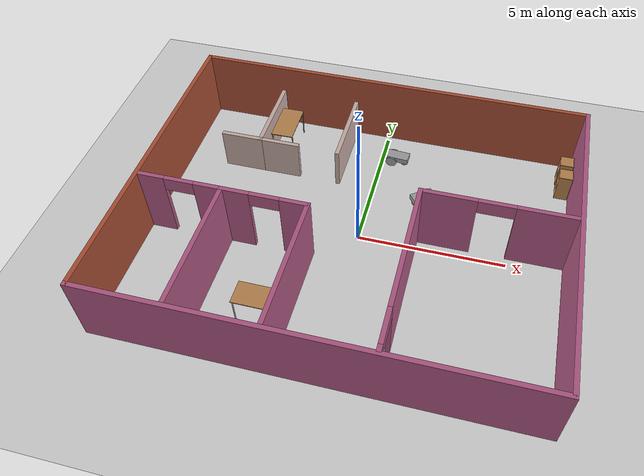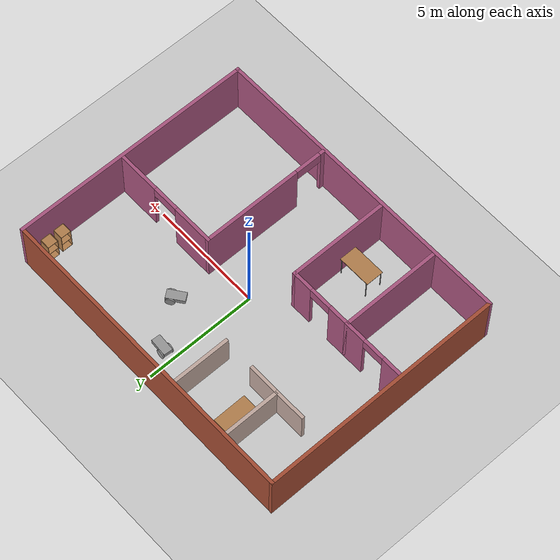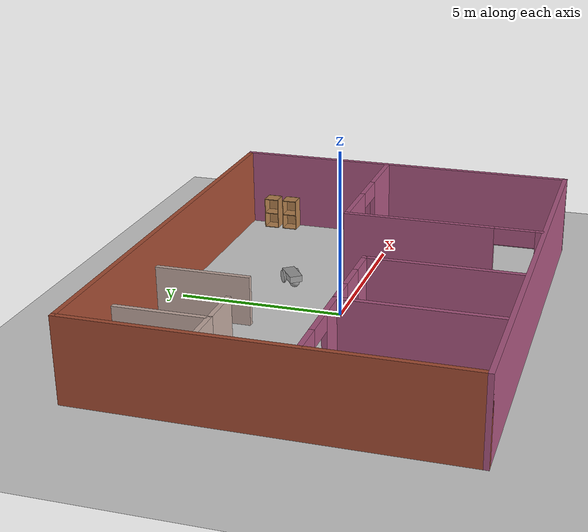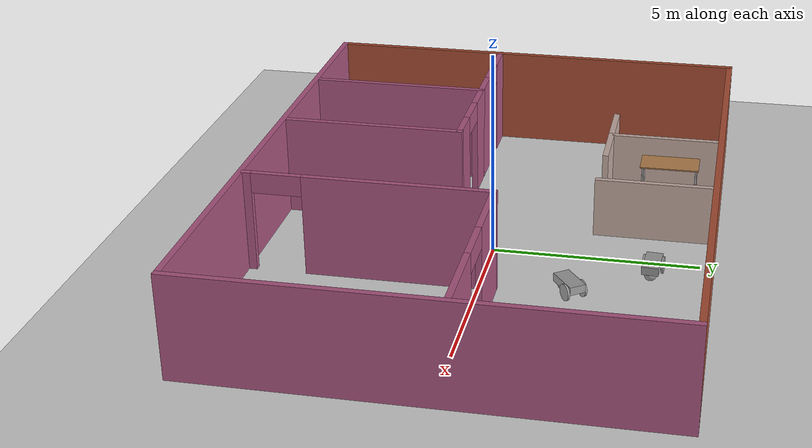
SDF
<sdf version="1.6">
 <world name="default">
  <plugin name="hello" filename="libhello.so"/>
  <light name="sun" type="directional">
   <pose>0 0 10 0 -0 0</pose>
   <diffuse>0.8 0.8 0.8 1</diffuse>
   <specular>0.2 0.2 0.2 1</specular>
   <attenuation>
    <range>1000</range>
    <constant>0.9</constant>
    <linear>0.01</linear>
    <quadratic>0.001</quadratic>
   </attenuation>
   <direction>-0.5 0.1 -0.9</direction>
  </light>
  <model name="ground_plane">
   <static>1</static>
   <link name="link">
    <collision name="collision">
     <geometry><plane><normal>0 0 1</normal><size>100 100</size></plane></geometry>
     <surface><friction><ode><mu>100</mu><mu2>50</mu2></ode></friction></surface>
    </collision>
    <visual name="visual">
     <cast_shadows>0</cast_shadows>
     <geometry><plane><normal>0 0 1</normal><size>100 100</size></plane></geometry>
     <material>
      <script><uri>file://media/materials/scripts/gazebo.material</uri><name>Gazebo/Grey</name></script>
     </material>
    </visual>
   </link>
  </model>
  <gravity>0 0 -9.8</gravity>
  <magnetic_field>6e-06 2.3e-05 -4.2e-05</magnetic_field>
  <atmosphere type="adiabatic"/>
  <physics name="default_physics" default="0" type="ode">
   <max_step_size>0.001</max_step_size>
   <real_time_factor>1</real_time_factor>
   <real_time_update_rate>1000</real_time_update_rate>
  </physics>
  <scene><ambient>0.4 0.4 0.4 1</ambient><background>0.7 0.7 0.7 1</background><shadows>1</shadows></scene>
  <spherical_coordinates>
   <surface_model>EARTH_WGS84</surface_model>
   <latitude_deg>0</latitude_deg>
   <longitude_deg>0</longitude_deg>
   <elevation>0</elevation>
   <heading_deg>0</heading_deg>
  </spherical_coordinates>
  <model name="Building">
   <pose>-0.086047 -0.158335 0 0 -0 0</pose>
   <link name="Wall_12">
    <pose>-5.528 -0.925 0 0 -0 0</pose>
    <visual name="Wall_12_Visual_0">
     <pose>-1.00127 0 1.25 0 -0 0</pose>
     <geometry><box><size>0.997471 0.15 2.5</size></box></geometry>
     <material>
      <script><uri>file://media/materials/scripts/gazebo.material</uri><name>Gazebo/Grey</name></script>
      <ambient>0.666667 0.333333 0.498039 1</ambient>
     </material>
     <meta><layer>0</layer></meta>
    </visual>
    <collision name="Wall_12_Collision_0">
     <geometry><box><size>0.997471 0.15 2.5</size></box></geometry>
     <pose>-1.00127 0 1.25 0 -0 0</pose>
    </collision>
    <visual name="Wall_12_Visual_1">
     <pose>0.998735 0 1.25 0 -0 0</pose>
     <geometry><box><size>1.00253 0.15 2.5</size></box></geometry>
     <material>
      <script><uri>file://media/materials/scripts/gazebo.material</uri><name>Gazebo/Grey</name></script>
      <ambient>0.666667 0.333333 0.498039 1</ambient>
     </material>
     <meta><layer>0</layer></meta>
    </visual>
    <collision name="Wall_12_Collision_1">
     <geometry><box><size>1.00253 0.15 2.5</size></box></geometry>
     <pose>0.998735 0 1.25 0 -0 0</pose>
    </collision>
    <visual name="Wall_12_Visual_2">
     <pose>-0.002529 0 2.25 0 -0 0</pose>
     <geometry><box><size>1 0.15 0.5</size></box></geometry>
     <material>
      <script><uri>file://media/materials/scripts/gazebo.material</uri><name>Gazebo/Grey</name></script>
      <ambient>0.666667 0.333333 0.498039 1</ambient>
     </material>
     <meta><layer>0</layer></meta>
    </visual>
    <collision name="Wall_12_Collision_2">
     <geometry><box><size>1 0.15 0.5</size></box></geometry>
     <pose>-0.002529 0 2.25 0 -0 0</pose>
    </collision>
   </link>
   <link name="Wall_15">
    <collision name="Wall_15_Collision">
     <geometry><box><size>4.5 0.15 2.5</size></box></geometry>
     <pose>0 0 1.25 0 -0 0</pose>
    </collision>
    <visual name="Wall_15_Visual">
     <pose>0 0 1.25 0 -0 0</pose>
     <geometry><box><size>4.5 0.15 2.5</size></box></geometry>
     <material>
      <script><uri>file://media/materials/scripts/gazebo.material</uri><name>Gazebo/Grey</name></script>
      <ambient>0.666667 0.333333 0.498039 1</ambient>
     </material>
     <meta><layer>0</layer></meta>
    </visual>
    <pose>-4.103 -3.1 0 0 0 -1.5708</pose>
   </link>
   <link name="Wall_17">
    <pose>-2.678 -0.925 0 0 -0 0</pose>
    <visual name="Wall_17_Visual_0">
     <pose>-0.996642 0 1.25 0 -0 0</pose>
     <geometry><box><size>1.00672 0.15 2.5</size></box></geometry>
     <material>
      <script><uri>file://media/materials/scripts/gazebo.material</uri><name>Gazebo/Grey</name></script>
      <ambient>0.666667 0.333333 0.498039 1</ambient>
     </material>
     <meta><layer>0</layer></meta>
    </visual>
    <collision name="Wall_17_Collision_0">
     <geometry><box><size>1.00672 0.15 2.5</size></box></geometry>
     <pose>-0.996642 0 1.25 0 -0 0</pose>
    </collision>
    <visual name="Wall_17_Visual_1">
     <pose>1.00336 0 1.25 0 -0 0</pose>
     <geometry><box><size>0.993284 0.15 2.5</size></box></geometry>
     <material>
      <script><uri>file://media/materials/scripts/gazebo.material</uri><name>Gazebo/Grey</name></script>
      <ambient>0.666667 0.333333 0.498039 1</ambient>
     </material>
     <meta><layer>0</layer></meta>
    </visual>
    <collision name="Wall_17_Collision_1">
     <geometry><box><size>0.993284 0.15 2.5</size></box></geometry>
     <pose>1.00336 0 1.25 0 -0 0</pose>
    </collision>
    <visual name="Wall_17_Visual_2">
     <pose>0.006716 0 2.25 0 -0 0</pose>
     <geometry><box><size>1 0.15 0.5</size></box></geometry>
     <material>
      <script><uri>file://media/materials/scripts/gazebo.material</uri><name>Gazebo/Grey</name></script>
      <ambient>0.666667 0.333333 0.498039 1</ambient>
     </material>
     <meta><layer>0</layer></meta>
    </visual>
    <collision name="Wall_17_Collision_2">
     <geometry><box><size>1 0.15 0.5</size></box></geometry>
     <pose>0.006716 0 2.25 0 -0 0</pose>
    </collision>
   </link>
   <link name="Wall_19">
    <collision name="Wall_19_Collision">
     <geometry><box><size>4.5 0.15 2.5</size></box></geometry>
     <pose>0 0 1.25 0 -0 0</pose>
    </collision>
    <visual name="Wall_19_Visual">
     <pose>0 0 1.25 0 -0 0</pose>
     <geometry><box><size>4.5 0.15 2.5</size></box></geometry>
     <material>
      <script><uri>file://media/materials/scripts/gazebo.material</uri><name>Gazebo/Grey</name></script>
      <ambient>0.666667 0.333333 0.498039 1</ambient>
     </material>
     <meta><layer>0</layer></meta>
    </visual>
    <pose>-1.253 -3.1 0 0 0 -1.5708</pose>
   </link>
   <link name="Wall_21">
    <collision name="Wall_21_Collision">
     <geometry><box><size>3 0.15 1.5</size></box></geometry>
     <pose>0 0 0.75 0 -0 0</pose>
    </collision>
    <visual name="Wall_21_Visual">
     <pose>0 0 0.75 0 -0 0</pose>
     <geometry><box><size>3 0.15 1.5</size></box></geometry>
     <material>
      <script><uri>file://media/materials/scripts/gazebo.material</uri><name>Gazebo/Grey</name></script>
      <ambient>0.760784 0.662745 0.627451 1</ambient>
     </material>
     <meta><layer>0</layer></meta>
    </visual>
    <pose>-4.103 3.972 0 0 0 -1.5708</pose>
   </link>
   <link name="Wall_23">
    <collision name="Wall_23_Collision">
     <geometry><box><size>3 0.15 1.5</size></box></geometry>
     <pose>0 0 0.75 0 -0 0</pose>
    </collision>
    <visual name="Wall_23_Visual">
     <pose>0 0 0.75 0 -0 0</pose>
     <geometry><box><size>3 0.15 1.5</size></box></geometry>
     <material>
      <script><uri>file://media/materials/scripts/gazebo.material</uri><name>Gazebo/Grey</name></script>
      <ambient>0.760784 0.662745 0.627451 1</ambient>
     </material>
     <meta><layer>0</layer></meta>
    </visual>
    <pose>-1.253 3.952 0 0 0 -1.5708</pose>
   </link>
   <link name="Wall_25">
    <collision name="Wall_25_Collision">
     <geometry><box><size>1.5 0.15 1.5</size></box></geometry>
     <pose>0 0 0.75 0 -0 0</pose>
    </collision>
    <visual name="Wall_25_Visual">
     <pose>0 0 0.75 0 -0 0</pose>
     <geometry><box><size>1.5 0.15 1.5</size></box></geometry>
     <material>
      <script><uri>file://media/materials/scripts/gazebo.material</uri><name>Gazebo/Grey</name></script>
      <ambient>0.760784 0.662745 0.627451 1</ambient>
     </material>
     <meta><layer>0</layer></meta>
    </visual>
    <pose>-4.778 2.547 0 0 -0 3.14159</pose>
   </link>
   <link name="Wall_27">
    <collision name="Wall_27_Collision">
     <geometry><box><size>1.5 0.15 1.5</size></box></geometry>
     <pose>0 0 0.75 0 -0 0</pose>
    </collision>
    <visual name="Wall_27_Visual">
     <pose>0 0 0.75 0 -0 0</pose>
     <geometry><box><size>1.5 0.15 1.5</size></box></geometry>
     <material>
      <script><uri>file://media/materials/scripts/gazebo.material</uri><name>Gazebo/Grey</name></script>
      <ambient>0.760784 0.662745 0.627451 1</ambient>
     </material>
     <meta><layer>0</layer></meta>
    </visual>
    <pose>-3.428 2.547 0 0 -0 0</pose>
   </link>
   <link name="Wall_29">
    <pose>2 -2.399 0 0 -0 1.5708</pose>
    <visual name="Wall_29_Visual_0">
     <pose>-2.87898 0 1.25 0 -0 0</pose>
     <geometry><box><size>0.242034 0.15 2.5</size></box></geometry>
     <material>
      <script><uri>file://media/materials/scripts/gazebo.material</uri><name>Gazebo/Grey</name></script>
      <ambient>0.666667 0.333333 0.498039 1</ambient>
     </material>
     <meta><layer>0</layer></meta>
    </visual>
    <collision name="Wall_29_Collision_0">
     <geometry><box><size>0.242034 0.15 2.5</size></box></geometry>
     <pose>-2.87898 0 1.25 0 -0 0</pose>
    </collision>
    <visual name="Wall_29_Visual_1">
     <pose>0.721017 0 1.25 0 -0 0</pose>
     <geometry><box><size>4.55797 0.15 2.5</size></box></geometry>
     <material>
      <script><uri>file://media/materials/scripts/gazebo.material</uri><name>Gazebo/Grey</name></script>
      <ambient>0.666667 0.333333 0.498039 1</ambient>
     </material>
     <meta><layer>0</layer></meta>
    </visual>
    <collision name="Wall_29_Collision_1">
     <geometry><box><size>4.55797 0.15 2.5</size></box></geometry>
     <pose>0.721017 0 1.25 0 -0 0</pose>
    </collision>
    <visual name="Wall_29_Visual_2">
     <pose>-2.15797 0 2.25 0 -0 0</pose>
     <geometry><box><size>1.2 0.15 0.5</size></box></geometry>
     <material>
      <script><uri>file://media/materials/scripts/gazebo.material</uri><name>Gazebo/Grey</name></script>
      <ambient>0.666667 0.333333 0.498039 1</ambient>
     </material>
     <meta><layer>0</layer></meta>
    </visual>
    <collision name="Wall_29_Collision_2">
     <geometry><box><size>1.2 0.15 0.5</size></box></geometry>
     <pose>-2.15797 0 2.25 0 -0 0</pose>
    </collision>
   </link>
   <link name="Wall_3">
    <collision name="Wall_3_Collision">
     <geometry><box><size>14.15 0.15 2.5</size></box></geometry>
     <pose>0 0 1.25 0 -0 0</pose>
    </collision>
    <visual name="Wall_3_Visual">
     <pose>0 0 1.25 0 -0 0</pose>
     <geometry><box><size>14.15 0.15 2.5</size></box></geometry>
     <material>
      <script><uri>file://media/materials/scripts/gazebo.material</uri><name>Gazebo/Grey</name></script>
      <ambient>0.666667 0.333333 0.498039 1</ambient>
     </material>
     <meta><layer>0</layer></meta>
    </visual>
    <pose>0 -5.425 0 0 -0 0</pose>
   </link>
   <link name="Wall_31">
    <pose>4.425 0.526 0 0 -0 0</pose>
    <visual name="Wall_31_Visual_0">
     <pose>-1.55299 0 1.25 0 -0 0</pose>
     <geometry><box><size>1.89402 0.15 2.5</size></box></geometry>
     <material>
      <script><uri>file://media/materials/scripts/gazebo.material</uri><name>Gazebo/Grey</name></script>
      <ambient>0.666667 0.333333 0.498039 1</ambient>
     </material>
     <meta><layer>0</layer></meta>
    </visual>
    <collision name="Wall_31_Collision_0">
     <geometry><box><size>1.89402 0.15 2.5</size></box></geometry>
     <pose>-1.55299 0 1.25 0 -0 0</pose>
    </collision>
    <visual name="Wall_31_Visual_1">
     <pose>1.54701 0 1.25 0 -0 0</pose>
     <geometry><box><size>1.90598 0.15 2.5</size></box></geometry>
     <material>
      <script><uri>file://media/materials/scripts/gazebo.material</uri><name>Gazebo/Grey</name></script>
      <ambient>0.666667 0.333333 0.498039 1</ambient>
     </material>
     <meta><layer>0</layer></meta>
    </visual>
    <collision name="Wall_31_Collision_1">
     <geometry><box><size>1.90598 0.15 2.5</size></box></geometry>
     <pose>1.54701 0 1.25 0 -0 0</pose>
    </collision>
    <visual name="Wall_31_Visual_2">
     <pose>-0.005978 0 2.25 0 -0 0</pose>
     <geometry><box><size>1.2 0.15 0.5</size></box></geometry>
     <material>
      <script><uri>file://media/materials/scripts/gazebo.material</uri><name>Gazebo/Grey</name></script>
      <ambient>0.666667 0.333333 0.498039 1</ambient>
     </material>
     <meta><layer>0</layer></meta>
    </visual>
    <collision name="Wall_31_Collision_2">
     <geometry><box><size>1.2 0.15 0.5</size></box></geometry>
     <pose>-0.005978 0 2.25 0 -0 0</pose>
    </collision>
   </link>
   <link name="Wall_5">
    <collision name="Wall_5_Collision">
     <geometry><box><size>11 0.15 2.5</size></box></geometry>
     <pose>0 0 1.25 0 -0 0</pose>
    </collision>
    <visual name="Wall_5_Visual">
     <pose>0 0 1.25 0 -0 0</pose>
     <geometry><box><size>11 0.15 2.5</size></box></geometry>
     <material>
      <script><uri>file://media/materials/scripts/gazebo.material</uri><name>Gazebo/Bricks</name></script>
      <ambient>0.666667 0.333333 0.498039 1</ambient>
     </material>
     <meta><layer>0</layer></meta>
    </visual>
    <pose>-7 0 0 0 -0 1.5708</pose>
   </link>
   <link name="Wall_7">
    <collision name="Wall_7_Collision">
     <geometry><box><size>11 0.15 2.5</size></box></geometry>
     <pose>0 0 1.25 0 -0 0</pose>
    </collision>
    <visual name="Wall_7_Visual">
     <pose>0 0 1.25 0 -0 0</pose>
     <geometry><box><size>11 0.15 2.5</size></box></geometry>
     <material>
      <script><uri>file://media/materials/scripts/gazebo.material</uri><name>Gazebo/Grey</name></script>
      <ambient>0.666667 0.333333 0.498039 1</ambient>
     </material>
     <meta><layer>0</layer></meta>
    </visual>
    <pose>7 0 0 0 -0 1.5708</pose>
   </link>
   <link name="Wall_9">
    <collision name="Wall_9_Collision">
     <geometry><box><size>14 0.15 2.5</size></box></geometry>
     <pose>0 0 1.25 0 -0 0</pose>
    </collision>
    <visual name="Wall_9_Visual">
     <pose>0 0 1.25 0 -0 0</pose>
     <geometry><box><size>14 0.15 2.5</size></box></geometry>
     <material>
      <script><uri>file://media/materials/scripts/gazebo.material</uri><name>Gazebo/Bricks</name></script>
      <ambient>0.666667 0.333333 0.498039 1</ambient>
     </material>
     <meta><layer>0</layer></meta>
    </visual>
    <pose>-0.075 5.425 0 0 -0 0</pose>
   </link>
   <static>1</static>
  </model>
  <model name="Robot">
   <link name="link_1">
    <pose>-0.1 0 0 0 -0 0</pose>
    <inertial>
     <mass>1</mass>
     <inertia>
      <ixx>0.166667</ixx>
      <ixy>0</ixy>
      <ixz>0</ixz>
      <iyy>0.166667</iyy>
      <iyz>0</iyz>
      <izz>0.166667</izz>
     </inertia>
    </inertial>
    <visual name="visual">
     <geometry><box><size>0.8 0.4 0.2</size></box></geometry>
     <material>
      <lighting>1</lighting>
      <script><uri>file://media/materials/scripts/gazebo.material</uri><name>Gazebo/Grey</name></script>
      <ambient>0.3 0.3 0.3 1</ambient>
      <diffuse>0.7 0.7 0.7 1</diffuse>
      <specular>0.01 0.01 0.01 1</specular>
      <emissive>0 0 0 1</emissive>
      <shader type="vertex"><normal_map>__default__</normal_map></shader>
     </material>
    </visual>
    <collision name="collision">
     <geometry><box><size>0.8 0.4 0.2</size></box></geometry>
     <surface>
      <friction>
       <ode><mu>1</mu><mu2>1</mu2><fdir1>0 0 0</fdir1><slip1>0</slip1><slip2>0</slip2></ode>
       <torsional>
        <coefficient>1</coefficient>
        <patch_radius>0</patch_radius>
        <surface_radius>0</surface_radius>
        <use_patch_radius>1</use_patch_radius>
        <ode><slip>0</slip></ode>
       </torsional>
      </friction>
      <bounce><restitution_coefficient>0</restitution_coefficient><threshold>1e+06</threshold></bounce>
      <contact>
       <collide_without_contact>0</collide_without_contact>
       <collide_without_contact_bitmask>1</collide_without_contact_bitmask>
       <collide_bitmask>1</collide_bitmask>
       <ode>
        <soft_cfm>0</soft_cfm>
        <soft_erp>0.2</soft_erp>
        <kp>1e+13</kp>
        <kd>1</kd>
        <max_vel>0.01</max_vel>
        <min_depth>0</min_depth>
       </ode>
       <bullet>
        <split_impulse>1</split_impulse>
        <split_impulse_penetration_threshold>-0.01</split_impulse_penetration_threshold>
        <soft_cfm>0</soft_cfm>
        <soft_erp>0.2</soft_erp>
        <kp>1e+13</kp>
        <kd>1</kd>
       </bullet>
      </contact>
     </surface>
    </collision>
   </link>
   <link name="link_2">
    <pose>-0.3 -0.225019 -0.1 1.5707 -0 0</pose>
    <inertial>
     <mass>1</mass>
     <inertia><ixx>0.145833</ixx><ixy>0</ixy><ixz>0</ixz><iyy>0.145833</iyy><iyz>0</iyz><izz>0.125</izz></inertia>
     <pose>0 0 0 1.5707 -0 0</pose>
    </inertial>
    <visual name="visual">
     <geometry><cylinder><radius>0.2</radius><length>0.05</length></cylinder></geometry>
     <material>
      <lighting>1</lighting>
      <script><uri>file://media/materials/scripts/gazebo.material</uri><name>Gazebo/Grey</name></script>
      <ambient>0.3 0.3 0.3 1</ambient>
      <diffuse>0.7 0.7 0.7 1</diffuse>
      <specular>0.01 0.01 0.01 1</specular>
      <emissive>0 0 0 1</emissive>
      <shader type="vertex"><normal_map>__default__</normal_map></shader>
     </material>
    </visual>
    <collision name="collision">
     <geometry><cylinder><radius>0.2</radius><length>0.05</length></cylinder></geometry>
     <surface>
      <friction>
       <ode><mu>1</mu><mu2>1</mu2><fdir1>0 0 0</fdir1><slip1>0</slip1><slip2>0</slip2></ode>
       <torsional>
        <coefficient>1</coefficient>
        <patch_radius>0</patch_radius>
        <surface_radius>0</surface_radius>
        <use_patch_radius>1</use_patch_radius>
        <ode><slip>0</slip></ode>
       </torsional>
      </friction>
      <bounce><restitution_coefficient>0</restitution_coefficient><threshold>1e+06</threshold></bounce>
      <contact>
       <collide_without_contact>0</collide_without_contact>
       <collide_without_contact_bitmask>1</collide_without_contact_bitmask>
       <collide_bitmask>1</collide_bitmask>
       <ode>
        <soft_cfm>0</soft_cfm>
        <soft_erp>0.2</soft_erp>
        <kp>1e+13</kp>
        <kd>1</kd>
        <max_vel>0.01</max_vel>
        <min_depth>0</min_depth>
       </ode>
       <bullet>
        <split_impulse>1</split_impulse>
        <split_impulse_penetration_threshold>-0.01</split_impulse_penetration_threshold>
        <soft_cfm>0</soft_cfm>
        <soft_erp>0.2</soft_erp>
        <kp>1e+13</kp>
        <kd>1</kd>
       </bullet>
      </contact>
     </surface>
    </collision>
   </link>
   <link name="link_2_clone">
    <pose>-0.3 0.225019 -0.1 1.5707 -0 0</pose>
    <inertial>
     <mass>1</mass>
     <inertia><ixx>0.145833</ixx><ixy>0</ixy><ixz>0</ixz><iyy>0.145833</iyy><iyz>0</iyz><izz>0.125</izz></inertia>
     <pose>0 0 0 1.5707 -0 0</pose>
    </inertial>
    <visual name="visual">
     <geometry><cylinder><radius>0.2</radius><length>0.05</length></cylinder></geometry>
     <material>
      <lighting>1</lighting>
      <script><uri>file://media/materials/scripts/gazebo.material</uri><name>Gazebo/Grey</name></script>
      <ambient>0.3 0.3 0.3 1</ambient>
      <diffuse>0.7 0.7 0.7 1</diffuse>
      <specular>0.01 0.01 0.01 1</specular>
      <emissive>0 0 0 1</emissive>
      <shader type="vertex"><normal_map>__default__</normal_map></shader>
     </material>
    </visual>
    <collision name="collision">
     <geometry><cylinder><radius>0.2</radius><length>0.05</length></cylinder></geometry>
     <surface>
      <friction>
       <ode><mu>1</mu><mu2>1</mu2><fdir1>0 0 0</fdir1><slip1>0</slip1><slip2>0</slip2></ode>
       <torsional>
        <coefficient>1</coefficient>
        <patch_radius>0</patch_radius>
        <surface_radius>0</surface_radius>
        <use_patch_radius>1</use_patch_radius>
        <ode><slip>0</slip></ode>
       </torsional>
      </friction>
      <bounce><restitution_coefficient>0</restitution_coefficient><threshold>1e+06</threshold></bounce>
      <contact>
       <collide_without_contact>0</collide_without_contact>
       <collide_without_contact_bitmask>1</collide_without_contact_bitmask>
       <collide_bitmask>1</collide_bitmask>
       <ode>
        <soft_cfm>0</soft_cfm>
        <soft_erp>0.2</soft_erp>
        <kp>1e+13</kp>
        <kd>1</kd>
        <max_vel>0.01</max_vel>
        <min_depth>0</min_depth>
       </ode>
       <bullet>
        <split_impulse>1</split_impulse>
        <split_impulse_penetration_threshold>-0.01</split_impulse_penetration_threshold>
        <soft_cfm>0</soft_cfm>
        <soft_erp>0.2</soft_erp>
        <kp>1e+13</kp>
        <kd>1</kd>
       </bullet>
      </contact>
     </surface>
    </collision>
   </link>
   <link name="link_4">
    <pose>0.15 0 -0.15 0 -0 0</pose>
    <inertial>
     <mass>1</mass>
     <inertia><ixx>0.1</ixx><ixy>0</ixy><ixz>0</ixz><iyy>0.1</iyy><iyz>0</iyz><izz>0.1</izz></inertia>
    </inertial>
    <visual name="visual">
     <geometry><sphere><radius>0.15</radius></sphere></geometry>
     <material>
      <lighting>1</lighting>
      <script><uri>file://media/materials/scripts/gazebo.material</uri><name>Gazebo/Grey</name></script>
      <ambient>0.3 0.3 0.3 1</ambient>
      <diffuse>0.7 0.7 0.7 1</diffuse>
      <specular>0.01 0.01 0.01 1</specular>
      <emissive>0 0 0 1</emissive>
      <shader type="vertex"><normal_map>__default__</normal_map></shader>
     </material>
    </visual>
    <collision name="collision">
     <geometry><sphere><radius>0.15</radius></sphere></geometry>
     <surface>
      <friction>
       <ode><mu>1</mu><mu2>1</mu2><fdir1>0 0 0</fdir1><slip1>0</slip1><slip2>0</slip2></ode>
       <torsional>
        <coefficient>1</coefficient>
        <patch_radius>0</patch_radius>
        <surface_radius>0</surface_radius>
        <use_patch_radius>1</use_patch_radius>
        <ode><slip>0</slip></ode>
       </torsional>
      </friction>
      <bounce><restitution_coefficient>0</restitution_coefficient><threshold>1e+06</threshold></bounce>
      <contact>
       <collide_without_contact>0</collide_without_contact>
       <collide_without_contact_bitmask>1</collide_without_contact_bitmask>
       <collide_bitmask>1</collide_bitmask>
       <ode>
        <soft_cfm>0</soft_cfm>
        <soft_erp>0.2</soft_erp>
        <kp>1e+13</kp>
        <kd>1</kd>
        <max_vel>0.01</max_vel>
        <min_depth>0</min_depth>
       </ode>
       <bullet>
        <split_impulse>1</split_impulse>
        <split_impulse_penetration_threshold>-0.01</split_impulse_penetration_threshold>
        <soft_cfm>0</soft_cfm>
        <soft_erp>0.2</soft_erp>
        <kp>1e+13</kp>
        <kd>1</kd>
       </bullet>
      </contact>
     </surface>
    </collision>
   </link>
   <joint name="link_1_JOINT_0" type="revolute">
    <parent>link_1</parent>
    <child>link_2_clone</child>
    <axis>
     <xyz>0 0 1</xyz>
     <use_parent_model_frame>0</use_parent_model_frame>
     <limit>
      <lower>-1.79769e+308</lower>
      <upper>1.79769e+308</upper>
      <effort>-1</effort>
      <velocity>-1</velocity>
     </limit>
     <dynamics>
      <spring_reference>0</spring_reference>
      <spring_stiffness>0</spring_stiffness>
      <damping>0</damping>
     </dynamics>
    </axis>
    <physics>
     <ode><limit><cfm>0</cfm><erp>0.2</erp></limit><suspension><cfm>0</cfm><erp>0.2</erp></suspension></ode>
    </physics>
   </joint>
   <joint name="link_1_JOINT_2" type="revolute">
    <parent>link_1</parent>
    <child>link_2</child>
    <axis>
     <xyz>0 0 -1</xyz>
     <use_parent_model_frame>0</use_parent_model_frame>
     <limit>
      <lower>-1.79769e+308</lower>
      <upper>1.79769e+308</upper>
      <effort>-1</effort>
      <velocity>-1</velocity>
     </limit>
     <dynamics>
      <spring_reference>0</spring_reference>
      <spring_stiffness>0</spring_stiffness>
      <damping>0</damping>
     </dynamics>
    </axis>
    <physics>
     <ode><limit><cfm>0</cfm><erp>0.2</erp></limit><suspension><cfm>0</cfm><erp>0.2</erp></suspension></ode>
    </physics>
   </joint>
   <joint name="link_1_JOINT_4" type="ball">
    <parent>link_1</parent>
    <child>link_4</child>
    <physics>
     <ode><limit><cfm>0</cfm><erp>0.2</erp></limit><suspension><cfm>0</cfm><erp>0.2</erp></suspension></ode>
    </physics>
   </joint>
   <static>0</static>
   <pose>0.672562 3.89954 0.300001 0 5e-06 -0.070478</pose>
  </model>
  <model name="Robot_0">
   <link name="link_1">
    <pose>-0.1 0 0 0 -0 0</pose>
    <inertial>
     <mass>1</mass>
     <inertia>
      <ixx>0.166667</ixx>
      <ixy>0</ixy>
      <ixz>0</ixz>
      <iyy>0.166667</iyy>
      <iyz>0</iyz>
      <izz>0.166667</izz>
     </inertia>
    </inertial>
    <visual name="visual">
     <geometry><box><size>0.8 0.4 0.2</size></box></geometry>
     <material>
      <lighting>1</lighting>
      <script><uri>file://media/materials/scripts/gazebo.material</uri><name>Gazebo/Grey</name></script>
      <ambient>0.3 0.3 0.3 1</ambient>
      <diffuse>0.7 0.7 0.7 1</diffuse>
      <specular>0.01 0.01 0.01 1</specular>
      <emissive>0 0 0 1</emissive>
      <shader type="vertex"><normal_map>__default__</normal_map></shader>
     </material>
    </visual>
    <collision name="collision">
     <geometry><box><size>0.8 0.4 0.2</size></box></geometry>
     <surface>
      <friction>
       <ode><mu>1</mu><mu2>1</mu2><fdir1>0 0 0</fdir1><slip1>0</slip1><slip2>0</slip2></ode>
       <torsional>
        <coefficient>1</coefficient>
        <patch_radius>0</patch_radius>
        <surface_radius>0</surface_radius>
        <use_patch_radius>1</use_patch_radius>
        <ode><slip>0</slip></ode>
       </torsional>
      </friction>
      <bounce><restitution_coefficient>0</restitution_coefficient><threshold>1e+06</threshold></bounce>
      <contact>
       <collide_without_contact>0</collide_without_contact>
       <collide_without_contact_bitmask>1</collide_without_contact_bitmask>
       <collide_bitmask>1</collide_bitmask>
       <ode>
        <soft_cfm>0</soft_cfm>
        <soft_erp>0.2</soft_erp>
        <kp>1e+13</kp>
        <kd>1</kd>
        <max_vel>0.01</max_vel>
        <min_depth>0</min_depth>
       </ode>
       <bullet>
        <split_impulse>1</split_impulse>
        <split_impulse_penetration_threshold>-0.01</split_impulse_penetration_threshold>
        <soft_cfm>0</soft_cfm>
        <soft_erp>0.2</soft_erp>
        <kp>1e+13</kp>
        <kd>1</kd>
       </bullet>
      </contact>
     </surface>
    </collision>
   </link>
   <link name="link_2">
    <pose>-0.3 -0.225019 -0.1 1.5707 -0 0</pose>
    <inertial>
     <mass>1</mass>
     <inertia><ixx>0.145833</ixx><ixy>0</ixy><ixz>0</ixz><iyy>0.145833</iyy><iyz>0</iyz><izz>0.125</izz></inertia>
     <pose>0 0 0 1.5707 -0 0</pose>
    </inertial>
    <visual name="visual">
     <geometry><cylinder><radius>0.2</radius><length>0.05</length></cylinder></geometry>
     <material>
      <lighting>1</lighting>
      <script><uri>file://media/materials/scripts/gazebo.material</uri><name>Gazebo/Grey</name></script>
      <ambient>0.3 0.3 0.3 1</ambient>
      <diffuse>0.7 0.7 0.7 1</diffuse>
      <specular>0.01 0.01 0.01 1</specular>
      <emissive>0 0 0 1</emissive>
      <shader type="vertex"><normal_map>__default__</normal_map></shader>
     </material>
    </visual>
    <collision name="collision">
     <geometry><cylinder><radius>0.2</radius><length>0.05</length></cylinder></geometry>
     <surface>
      <friction>
       <ode><mu>1</mu><mu2>1</mu2><fdir1>0 0 0</fdir1><slip1>0</slip1><slip2>0</slip2></ode>
       <torsional>
        <coefficient>1</coefficient>
        <patch_radius>0</patch_radius>
        <surface_radius>0</surface_radius>
        <use_patch_radius>1</use_patch_radius>
        <ode><slip>0</slip></ode>
       </torsional>
      </friction>
      <bounce><restitution_coefficient>0</restitution_coefficient><threshold>1e+06</threshold></bounce>
      <contact>
       <collide_without_contact>0</collide_without_contact>
       <collide_without_contact_bitmask>1</collide_without_contact_bitmask>
       <collide_bitmask>1</collide_bitmask>
       <ode>
        <soft_cfm>0</soft_cfm>
        <soft_erp>0.2</soft_erp>
        <kp>1e+13</kp>
        <kd>1</kd>
        <max_vel>0.01</max_vel>
        <min_depth>0</min_depth>
       </ode>
       <bullet>
        <split_impulse>1</split_impulse>
        <split_impulse_penetration_threshold>-0.01</split_impulse_penetration_threshold>
        <soft_cfm>0</soft_cfm>
        <soft_erp>0.2</soft_erp>
        <kp>1e+13</kp>
        <kd>1</kd>
       </bullet>
      </contact>
     </surface>
    </collision>
   </link>
   <link name="link_2_clone">
    <pose>-0.3 0.225019 -0.1 1.5707 -0 0</pose>
    <inertial>
     <mass>1</mass>
     <inertia><ixx>0.145833</ixx><ixy>0</ixy><ixz>0</ixz><iyy>0.145833</iyy><iyz>0</iyz><izz>0.125</izz></inertia>
     <pose>0 0 0 1.5707 -0 0</pose>
    </inertial>
    <visual name="visual">
     <geometry><cylinder><radius>0.2</radius><length>0.05</length></cylinder></geometry>
     <material>
      <lighting>1</lighting>
      <script><uri>file://media/materials/scripts/gazebo.material</uri><name>Gazebo/Grey</name></script>
      <ambient>0.3 0.3 0.3 1</ambient>
      <diffuse>0.7 0.7 0.7 1</diffuse>
      <specular>0.01 0.01 0.01 1</specular>
      <emissive>0 0 0 1</emissive>
      <shader type="vertex"><normal_map>__default__</normal_map></shader>
     </material>
    </visual>
    <collision name="collision">
     <geometry><cylinder><radius>0.2</radius><length>0.05</length></cylinder></geometry>
     <surface>
      <friction>
       <ode><mu>1</mu><mu2>1</mu2><fdir1>0 0 0</fdir1><slip1>0</slip1><slip2>0</slip2></ode>
       <torsional>
        <coefficient>1</coefficient>
        <patch_radius>0</patch_radius>
        <surface_radius>0</surface_radius>
        <use_patch_radius>1</use_patch_radius>
        <ode><slip>0</slip></ode>
       </torsional>
      </friction>
      <bounce><restitution_coefficient>0</restitution_coefficient><threshold>1e+06</threshold></bounce>
      <contact>
       <collide_without_contact>0</collide_without_contact>
       <collide_without_contact_bitmask>1</collide_without_contact_bitmask>
       <collide_bitmask>1</collide_bitmask>
       <ode>
        <soft_cfm>0</soft_cfm>
        <soft_erp>0.2</soft_erp>
        <kp>1e+13</kp>
        <kd>1</kd>
        <max_vel>0.01</max_vel>
        <min_depth>0</min_depth>
       </ode>
       <bullet>
        <split_impulse>1</split_impulse>
        <split_impulse_penetration_threshold>-0.01</split_impulse_penetration_threshold>
        <soft_cfm>0</soft_cfm>
        <soft_erp>0.2</soft_erp>
        <kp>1e+13</kp>
        <kd>1</kd>
       </bullet>
      </contact>
     </surface>
    </collision>
   </link>
   <link name="link_4">
    <pose>0.15 0 -0.15 0 -0 0</pose>
    <inertial>
     <mass>1</mass>
     <inertia><ixx>0.1</ixx><ixy>0</ixy><ixz>0</ixz><iyy>0.1</iyy><iyz>0</iyz><izz>0.1</izz></inertia>
    </inertial>
    <visual name="visual">
     <geometry><sphere><radius>0.15</radius></sphere></geometry>
     <material>
      <lighting>1</lighting>
      <script><uri>file://media/materials/scripts/gazebo.material</uri><name>Gazebo/Grey</name></script>
      <ambient>0.3 0.3 0.3 1</ambient>
      <diffuse>0.7 0.7 0.7 1</diffuse>
      <specular>0.01 0.01 0.01 1</specular>
      <emissive>0 0 0 1</emissive>
      <shader type="vertex"><normal_map>__default__</normal_map></shader>
     </material>
    </visual>
    <collision name="collision">
     <geometry><sphere><radius>0.15</radius></sphere></geometry>
     <surface>
      <friction>
       <ode><mu>1</mu><mu2>1</mu2><fdir1>0 0 0</fdir1><slip1>0</slip1><slip2>0</slip2></ode>
       <torsional>
        <coefficient>1</coefficient>
        <patch_radius>0</patch_radius>
        <surface_radius>0</surface_radius>
        <use_patch_radius>1</use_patch_radius>
        <ode><slip>0</slip></ode>
       </torsional>
      </friction>
      <bounce><restitution_coefficient>0</restitution_coefficient><threshold>1e+06</threshold></bounce>
      <contact>
       <collide_without_contact>0</collide_without_contact>
       <collide_without_contact_bitmask>1</collide_without_contact_bitmask>
       <collide_bitmask>1</collide_bitmask>
       <ode>
        <soft_cfm>0</soft_cfm>
        <soft_erp>0.2</soft_erp>
        <kp>1e+13</kp>
        <kd>1</kd>
        <max_vel>0.01</max_vel>
        <min_depth>0</min_depth>
       </ode>
       <bullet>
        <split_impulse>1</split_impulse>
        <split_impulse_penetration_threshold>-0.01</split_impulse_penetration_threshold>
        <soft_cfm>0</soft_cfm>
        <soft_erp>0.2</soft_erp>
        <kp>1e+13</kp>
        <kd>1</kd>
       </bullet>
      </contact>
     </surface>
    </collision>
   </link>
   <joint name="link_1_JOINT_0" type="revolute">
    <parent>link_1</parent>
    <child>link_2_clone</child>
    <axis>
     <xyz>0 0 1</xyz>
     <use_parent_model_frame>0</use_parent_model_frame>
     <limit>
      <lower>-1.79769e+308</lower>
      <upper>1.79769e+308</upper>
      <effort>-1</effort>
      <velocity>-1</velocity>
     </limit>
     <dynamics>
      <spring_reference>0</spring_reference>
      <spring_stiffness>0</spring_stiffness>
      <damping>0</damping>
     </dynamics>
    </axis>
    <physics>
     <ode><limit><cfm>0</cfm><erp>0.2</erp></limit><suspension><cfm>0</cfm><erp>0.2</erp></suspension></ode>
    </physics>
   </joint>
   <joint name="link_1_JOINT_2" type="revolute">
    <parent>link_1</parent>
    <child>link_2</child>
    <axis>
     <xyz>0 0 -1</xyz>
     <use_parent_model_frame>0</use_parent_model_frame>
     <limit>
      <lower>-1.79769e+308</lower>
      <upper>1.79769e+308</upper>
      <effort>-1</effort>
      <velocity>-1</velocity>
     </limit>
     <dynamics>
      <spring_reference>0</spring_reference>
      <spring_stiffness>0</spring_stiffness>
      <damping>0</damping>
     </dynamics>
    </axis>
    <physics>
     <ode><limit><cfm>0</cfm><erp>0.2</erp></limit><suspension><cfm>0</cfm><erp>0.2</erp></suspension></ode>
    </physics>
   </joint>
   <joint name="link_1_JOINT_4" type="ball">
    <parent>link_1</parent>
    <child>link_4</child>
    <physics>
     <ode><limit><cfm>0</cfm><erp>0.2</erp></limit><suspension><cfm>0</cfm><erp>0.2</erp></suspension></ode>
    </physics>
   </joint>
   <static>0</static>
   <pose>1.74483 2.05122 0.300001 3e-06 3e-06 -2.50101</pose>
  </model>
  <model name="table">
   <static>1</static>
   <link name="link">
    <collision name="surface">
     <pose>0 0 1 0 -0 0</pose>
     <geometry><box><size>1.5 0.8 0.03</size></box></geometry>
     <surface><friction><ode><mu>0.6</mu><mu2>0.6</mu2></ode></friction></surface>
    </collision>
    <visual name="visual1">
     <pose>0 0 1 0 -0 0</pose>
     <geometry><box><size>1.5 0.8 0.03</size></box></geometry>
     <material>
      <script><uri>file://media/materials/scripts/gazebo.material</uri><name>Gazebo/Wood</name></script>
     </material>
    </visual>
    <collision name="front_left_leg">
     <pose>0.68 0.38 0.5 0 -0 0</pose>
     <geometry><cylinder><radius>0.02</radius><length>1</length></cylinder></geometry>
    </collision>
    <visual name="front_left_leg">
     <pose>0.68 0.38 0.5 0 -0 0</pose>
     <geometry><cylinder><radius>0.02</radius><length>1</length></cylinder></geometry>
     <material>
      <script><uri>file://media/materials/scripts/gazebo.material</uri><name>Gazebo/Grey</name></script>
     </material>
    </visual>
    <collision name="front_right_leg">
     <pose>0.68 -0.38 0.5 0 -0 0</pose>
     <geometry><cylinder><radius>0.02</radius><length>1</length></cylinder></geometry>
    </collision>
    <visual name="front_right_leg">
     <pose>0.68 -0.38 0.5 0 -0 0</pose>
     <geometry><cylinder><radius>0.02</radius><length>1</length></cylinder></geometry>
     <material>
      <script><uri>file://media/materials/scripts/gazebo.material</uri><name>Gazebo/Grey</name></script>
     </material>
    </visual>
    <collision name="back_right_leg">
     <pose>-0.68 -0.38 0.5 0 -0 0</pose>
     <geometry><cylinder><radius>0.02</radius><length>1</length></cylinder></geometry>
    </collision>
    <visual name="back_right_leg">
     <pose>-0.68 -0.38 0.5 0 -0 0</pose>
     <geometry><cylinder><radius>0.02</radius><length>1</length></cylinder></geometry>
     <material>
      <script><uri>file://media/materials/scripts/gazebo.material</uri><name>Gazebo/Grey</name></script>
     </material>
    </visual>
    <collision name="back_left_leg">
     <pose>-0.68 0.38 0.5 0 -0 0</pose>
     <geometry><cylinder><radius>0.02</radius><length>1</length></cylinder></geometry>
    </collision>
    <visual name="back_left_leg">
     <pose>-0.68 0.38 0.5 0 -0 0</pose>
     <geometry><cylinder><radius>0.02</radius><length>1</length></cylinder></geometry>
     <material>
      <script><uri>file://media/materials/scripts/gazebo.material</uri><name>Gazebo/Grey</name></script>
     </material>
    </visual>
   </link>
   <pose>-3.71046 3.9761 0 0 -0 1.57905</pose>
  </model>
  <model name="table_0">
   <static>1</static>
   <link name="link">
    <collision name="surface">
     <pose>0 0 1 0 -0 0</pose>
     <geometry><box><size>1.5 0.8 0.03</size></box></geometry>
     <surface><friction><ode><mu>0.6</mu><mu2>0.6</mu2></ode></friction></surface>
    </collision>
    <visual name="visual1">
     <pose>0 0 1 0 -0 0</pose>
     <geometry><box><size>1.5 0.8 0.03</size></box></geometry>
     <material>
      <script><uri>file://media/materials/scripts/gazebo.material</uri><name>Gazebo/Wood</name></script>
     </material>
    </visual>
    <collision name="front_left_leg">
     <pose>0.68 0.38 0.5 0 -0 0</pose>
     <geometry><cylinder><radius>0.02</radius><length>1</length></cylinder></geometry>
    </collision>
    <visual name="front_left_leg">
     <pose>0.68 0.38 0.5 0 -0 0</pose>
     <geometry><cylinder><radius>0.02</radius><length>1</length></cylinder></geometry>
     <material>
      <script><uri>file://media/materials/scripts/gazebo.material</uri><name>Gazebo/Grey</name></script>
     </material>
    </visual>
    <collision name="front_right_leg">
     <pose>0.68 -0.38 0.5 0 -0 0</pose>
     <geometry><cylinder><radius>0.02</radius><length>1</length></cylinder></geometry>
    </collision>
    <visual name="front_right_leg">
     <pose>0.68 -0.38 0.5 0 -0 0</pose>
     <geometry><cylinder><radius>0.02</radius><length>1</length></cylinder></geometry>
     <material>
      <script><uri>file://media/materials/scripts/gazebo.material</uri><name>Gazebo/Grey</name></script>
     </material>
    </visual>
    <collision name="back_right_leg">
     <pose>-0.68 -0.38 0.5 0 -0 0</pose>
     <geometry><cylinder><radius>0.02</radius><length>1</length></cylinder></geometry>
    </collision>
    <visual name="back_right_leg">
     <pose>-0.68 -0.38 0.5 0 -0 0</pose>
     <geometry><cylinder><radius>0.02</radius><length>1</length></cylinder></geometry>
     <material>
      <script><uri>file://media/materials/scripts/gazebo.material</uri><name>Gazebo/Grey</name></script>
     </material>
    </visual>
    <collision name="back_left_leg">
     <pose>-0.68 0.38 0.5 0 -0 0</pose>
     <geometry><cylinder><radius>0.02</radius><length>1</length></cylinder></geometry>
    </collision>
    <visual name="back_left_leg">
     <pose>-0.68 0.38 0.5 0 -0 0</pose>
     <geometry><cylinder><radius>0.02</radius><length>1</length></cylinder></geometry>
     <material>
      <script><uri>file://media/materials/scripts/gazebo.material</uri><name>Gazebo/Grey</name></script>
     </material>
    </visual>
   </link>
   <pose>-2.18434 -3.75792 0 0 -0 0</pose>
  </model>
  <model name="cabinet">
   <static>1</static>
   <link name="cabinet_bottom_plate">
    <inertial>
     <pose>0 0 -1 0 -0 0</pose>
     <inertia><ixx>2.05</ixx><ixy>0</ixy><ixz>0</ixz><iyy>2.05</iyy><iyz>0</iyz><izz>2.05</izz></inertia>
     <mass>25</mass>
    </inertial>
    <collision name="cabinet_bottom_plate_geom">
     <pose>0 0 0.01 0 -0 0</pose>
     <geometry><box><size>0.45 0.45 0.02</size></box></geometry>
    </collision>
    <visual name="cabinet_bottom_plate_geom_visual">
     <pose>0 0 0.01 0 -0 0</pose>
     <geometry><box><size>0.45 0.45 0.02</size></box></geometry>
     <material>
      <script><uri>file://media/materials/scripts/gazebo.material</uri><name>Gazebo/Wood</name></script>
     </material>
    </visual>
    <collision name="cabinet_bottom_plate_geom_cabinet_back_plate">
     <pose>0.235 0 0.51 0 -0 0</pose>
     <geometry><box><size>0.02 0.45 1.02</size></box></geometry>
    </collision>
    <visual name="cabinet_bottom_plate_geom_cabinet_back_plate_visual">
     <pose>0.235 0 0.51 0 -0 0</pose>
     <geometry><box><size>0.02 0.45 1.02</size></box></geometry>
     <material>
      <script><uri>file://media/materials/scripts/gazebo.material</uri><name>Gazebo/Wood</name></script>
     </material>
    </visual>
    <collision name="cabinet_bottom_plate_geom_cabinet_left_plate">
     <pose>0 0.235 0.51 0 -0 0</pose>
     <geometry><box><size>0.45 0.02 1.02</size></box></geometry>
    </collision>
    <visual name="cabinet_bottom_plate_geom_cabinet_left_plate_visual">
     <pose>0 0.235 0.51 0 -0 0</pose>
     <geometry><box><size>0.45 0.02 1.02</size></box></geometry>
     <material>
      <script><uri>file://media/materials/scripts/gazebo.material</uri><name>Gazebo/Wood</name></script>
     </material>
    </visual>
    <collision name="cabinet_bottom_plate_geom_cabinet_middle_plate">
     <pose>0 0 0.51 0 -0 0</pose>
     <geometry><box><size>0.45 0.45 0.02</size></box></geometry>
    </collision>
    <visual name="cabinet_bottom_plate_geom_cabinet_middle_plate_visual">
     <pose>0 0 0.51 0 -0 0</pose>
     <geometry><box><size>0.45 0.45 0.02</size></box></geometry>
     <material>
      <script><uri>file://media/materials/scripts/gazebo.material</uri><name>Gazebo/Wood</name></script>
     </material>
    </visual>
    <collision name="cabinet_bottom_plate_geom_cabinet_right_plate">
     <pose>0 -0.235 0.51 0 -0 0</pose>
     <geometry><box><size>0.45 0.02 1.02</size></box></geometry>
    </collision>
    <visual name="cabinet_bottom_plate_geom_cabinet_right_plate_visual">
     <pose>0 -0.235 0.51 0 -0 0</pose>
     <geometry><box><size>0.45 0.02 1.02</size></box></geometry>
     <material>
      <script><uri>file://media/materials/scripts/gazebo.material</uri><name>Gazebo/Wood</name></script>
     </material>
    </visual>
    <collision name="cabinet_bottom_plate_geom_cabinet_top_plate">
     <pose>0 0 1.01 0 -0 0</pose>
     <geometry><box><size>0.45 0.45 0.02</size></box></geometry>
    </collision>
    <visual name="cabinet_bottom_plate_geom_cabinet_top_plate_visual">
     <pose>0 0 1.01 0 -0 0</pose>
     <geometry><box><size>0.45 0.45 0.02</size></box></geometry>
     <material>
      <script><uri>file://media/materials/scripts/gazebo.material</uri><name>Gazebo/Wood</name></script>
     </material>
    </visual>
   </link>
   <pose>6.57957 4.3812 0 0 -0 0</pose>
  </model>
  <model name="cabinet_clone">
   <static>1</static>
   <link name="cabinet_bottom_plate">
    <inertial>
     <pose>0 0 -1 0 -0 0</pose>
     <inertia><ixx>2.05</ixx><ixy>0</ixy><ixz>0</ixz><iyy>2.05</iyy><iyz>0</iyz><izz>2.05</izz></inertia>
     <mass>25</mass>
    </inertial>
    <collision name="cabinet_bottom_plate_geom">
     <pose>0 0 0.01 0 -0 0</pose>
     <geometry><box><size>0.45 0.45 0.02</size></box></geometry>
    </collision>
    <visual name="cabinet_bottom_plate_geom_visual">
     <pose>0 0 0.01 0 -0 0</pose>
     <geometry><box><size>0.45 0.45 0.02</size></box></geometry>
     <material>
      <script><uri>file://media/materials/scripts/gazebo.material</uri><name>Gazebo/Wood</name></script>
     </material>
    </visual>
    <collision name="cabinet_bottom_plate_geom_cabinet_back_plate">
     <pose>0.235 0 0.51 0 -0 0</pose>
     <geometry><box><size>0.02 0.45 1.02</size></box></geometry>
    </collision>
    <visual name="cabinet_bottom_plate_geom_cabinet_back_plate_visual">
     <pose>0.235 0 0.51 0 -0 0</pose>
     <geometry><box><size>0.02 0.45 1.02</size></box></geometry>
     <material>
      <script><uri>file://media/materials/scripts/gazebo.material</uri><name>Gazebo/Wood</name></script>
     </material>
    </visual>
    <collision name="cabinet_bottom_plate_geom_cabinet_left_plate">
     <pose>0 0.235 0.51 0 -0 0</pose>
     <geometry><box><size>0.45 0.02 1.02</size></box></geometry>
    </collision>
    <visual name="cabinet_bottom_plate_geom_cabinet_left_plate_visual">
     <pose>0 0.235 0.51 0 -0 0</pose>
     <geometry><box><size>0.45 0.02 1.02</size></box></geometry>
     <material>
      <script><uri>file://media/materials/scripts/gazebo.material</uri><name>Gazebo/Wood</name></script>
     </material>
    </visual>
    <collision name="cabinet_bottom_plate_geom_cabinet_middle_plate">
     <pose>0 0 0.51 0 -0 0</pose>
     <geometry><box><size>0.45 0.45 0.02</size></box></geometry>
    </collision>
    <visual name="cabinet_bottom_plate_geom_cabinet_middle_plate_visual">
     <pose>0 0 0.51 0 -0 0</pose>
     <geometry><box><size>0.45 0.45 0.02</size></box></geometry>
     <material>
      <script><uri>file://media/materials/scripts/gazebo.material</uri><name>Gazebo/Wood</name></script>
     </material>
    </visual>
    <collision name="cabinet_bottom_plate_geom_cabinet_right_plate">
     <pose>0 -0.235 0.51 0 -0 0</pose>
     <geometry><box><size>0.45 0.02 1.02</size></box></geometry>
    </collision>
    <visual name="cabinet_bottom_plate_geom_cabinet_right_plate_visual">
     <pose>0 -0.235 0.51 0 -0 0</pose>
     <geometry><box><size>0.45 0.02 1.02</size></box></geometry>
     <material>
      <script><uri>file://media/materials/scripts/gazebo.material</uri><name>Gazebo/Wood</name></script>
     </material>
    </visual>
    <collision name="cabinet_bottom_plate_geom_cabinet_top_plate">
     <pose>0 0 1.01 0 -0 0</pose>
     <geometry><box><size>0.45 0.45 0.02</size></box></geometry>
    </collision>
    <visual name="cabinet_bottom_plate_geom_cabinet_top_plate_visual">
     <pose>0 0 1.01 0 -0 0</pose>
     <geometry><box><size>0.45 0.45 0.02</size></box></geometry>
     <material>
      <script><uri>file://media/materials/scripts/gazebo.material</uri><name>Gazebo/Wood</name></script>
     </material>
    </visual>
   </link>
   <pose>6.58476 3.73684 0 0 -0 0</pose>
  </model>
 </world>
</sdf>
